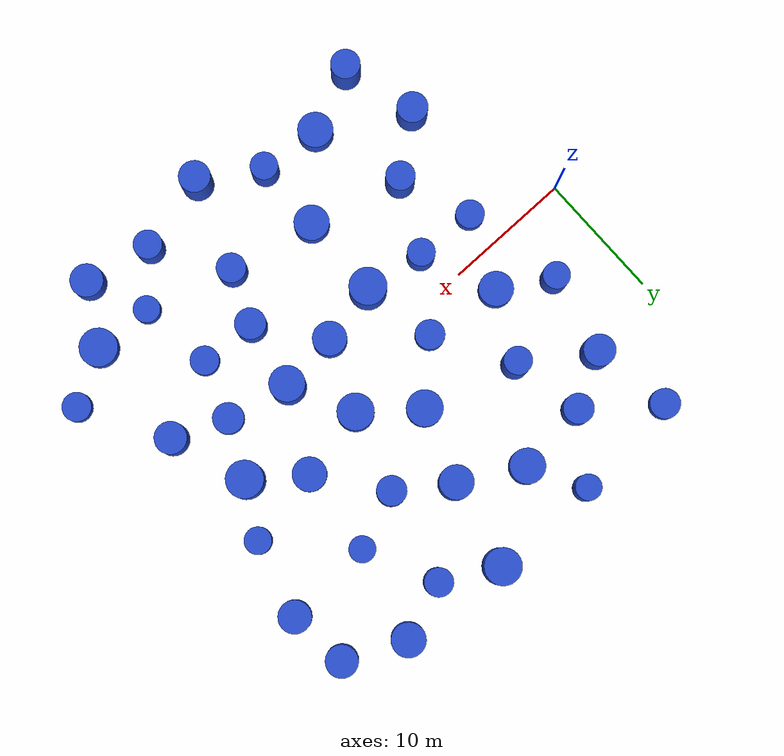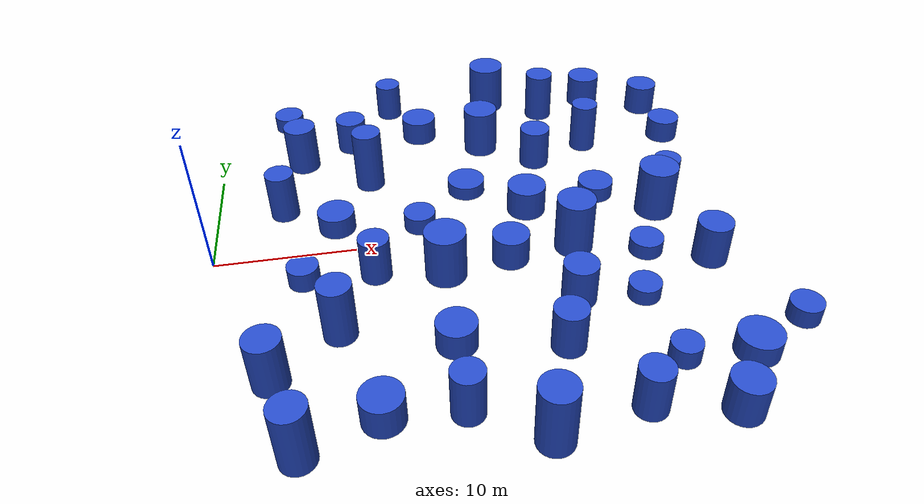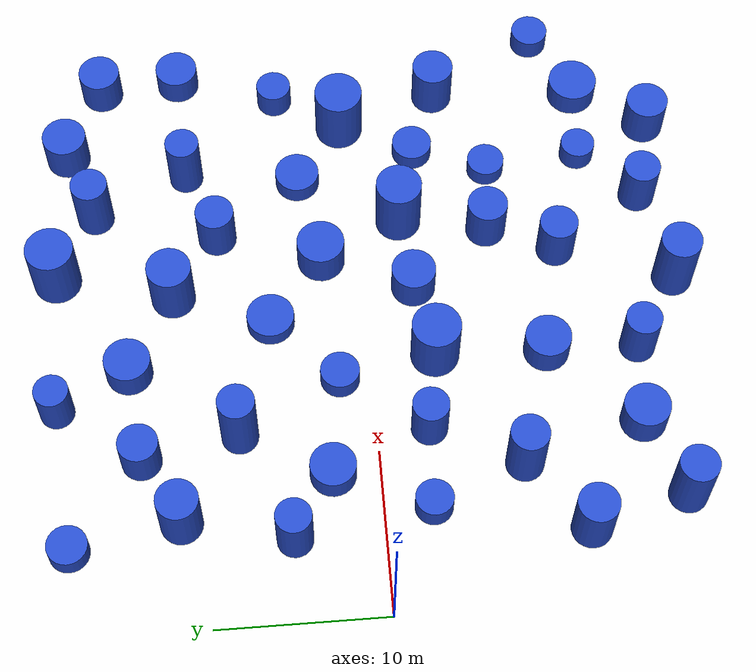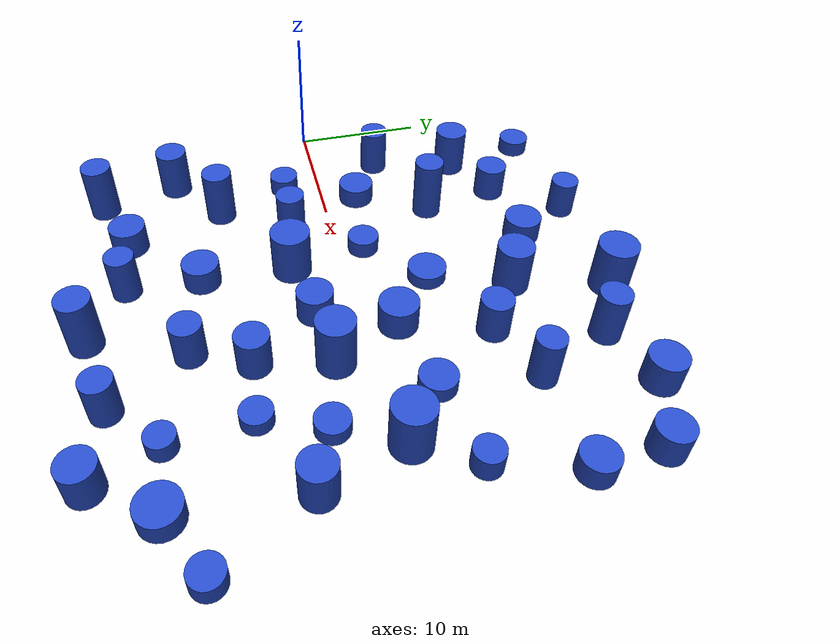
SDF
<sdf version="1.7">
 <world name="default">
  <model name="11">
   <static>1</static>
   <link name="link">
    <inertial>
     <mass>2</mass>
     <inertia><ixx>1.91224</ixx><ixy>0</ixy><ixz>0</ixz><iyy>1.91224</iyy><iyz>0</iyz><izz>2.0599</izz></inertia>
    </inertial>
    <collision name="collision">
     <geometry><cylinder><length>2.30082</length><radius>1.43524</radius></cylinder></geometry>
     <surface><contact><collide_without_contact>1</collide_without_contact></contact></surface>
    </collision>
    <visual name="visual">
     <geometry><cylinder><length>2.30082</length><radius>1.43524</radius></cylinder></geometry>
     <material>
      <script><uri>file://media/materials/scripts/gazebo.material</uri><name>Gazebo/Blue</name></script>
     </material>
    </visual>
    <gravity>0</gravity>
   </link>
   <pose>22.9935 2.50664 1.15041 0 -0 0</pose>
  </model>
  <model name="13">
   <static>1</static>
   <link name="link">
    <inertial>
     <mass>2</mass>
     <inertia>
      <ixx>0.964017</ixx>
      <ixy>0</ixy>
      <ixz>0</ixz>
      <iyy>0.964017</iyy>
      <iyz>0</iyz>
      <izz>1.34566</izz>
     </inertia>
    </inertial>
    <collision name="collision">
     <geometry><cylinder><length>1.32178</length><radius>1.16003</radius></cylinder></geometry>
     <surface><contact><collide_without_contact>1</collide_without_contact></contact></surface>
    </collision>
    <visual name="visual">
     <geometry><cylinder><length>1.32178</length><radius>1.16003</radius></cylinder></geometry>
     <material>
      <script><uri>file://media/materials/scripts/gazebo.material</uri><name>Gazebo/Blue</name></script>
     </material>
    </visual>
    <gravity>0</gravity>
   </link>
   <pose>14.8128 1.93175 0.660892 0 -0 0</pose>
  </model>
  <model name="16">
   <static>1</static>
   <link name="link">
    <inertial>
     <mass>2</mass>
     <inertia><ixx>2.47357</ixx><ixy>0</ixy><ixz>0</ixz><iyy>2.47357</iyy><iyz>0</iyz><izz>1.3114</izz></inertia>
    </inertial>
    <collision name="collision">
     <geometry><cylinder><length>3.3026</length><radius>1.14516</radius></cylinder></geometry>
     <surface><contact><collide_without_contact>1</collide_without_contact></contact></surface>
    </collision>
    <visual name="visual">
     <geometry><cylinder><length>3.3026</length><radius>1.14516</radius></cylinder></geometry>
     <material>
      <script><uri>file://media/materials/scripts/gazebo.material</uri><name>Gazebo/Blue</name></script>
     </material>
    </visual>
    <gravity>0</gravity>
   </link>
   <pose>22.6505 -11.8133 1.6513 0 -0 0</pose>
  </model>
  <model name="22">
   <static>1</static>
   <link name="link">
    <inertial>
     <mass>2</mass>
     <inertia><ixx>1.58085</ixx><ixy>0</ixy><ixz>0</ixz><iyy>1.58085</iyy><iyz>0</iyz><izz>1.86526</izz></inertia>
    </inertial>
    <collision name="collision">
     <geometry><cylinder><length>1.97214</length><radius>1.36574</radius></cylinder></geometry>
     <surface><contact><collide_without_contact>1</collide_without_contact></contact></surface>
    </collision>
    <visual name="visual">
     <geometry><cylinder><length>1.97214</length><radius>1.36574</radius></cylinder></geometry>
     <material>
      <script><uri>file://media/materials/scripts/gazebo.material</uri><name>Gazebo/Blue</name></script>
     </material>
    </visual>
    <gravity>0</gravity>
   </link>
   <pose>15.7592 -10.418 0.986071 0 -0 0</pose>
  </model>
  <model name="24">
   <static>1</static>
   <link name="link">
    <inertial>
     <mass>2</mass>
     <inertia><ixx>1.32861</ixx><ixy>0</ixy><ixz>0</ixz><iyy>1.32861</iyy><iyz>0</iyz><izz>1.81936</izz></inertia>
    </inertial>
    <collision name="collision">
     <geometry><cylinder><length>1.58543</length><radius>1.34884</radius></cylinder></geometry>
     <surface><contact><collide_without_contact>1</collide_without_contact></contact></surface>
    </collision>
    <visual name="visual">
     <geometry><cylinder><length>1.58543</length><radius>1.34884</radius></cylinder></geometry>
     <material>
      <script><uri>file://media/materials/scripts/gazebo.material</uri><name>Gazebo/Blue</name></script>
     </material>
    </visual>
    <gravity>0</gravity>
   </link>
   <pose>8.75022 2.75537 0.792717 0 -0 0</pose>
  </model>
  <model name="28">
   <static>1</static>
   <link name="link">
    <inertial>
     <mass>2</mass>
     <inertia>
      <ixx>0.983625</ixx>
      <ixy>0</ixy>
      <ixz>0</ixz>
      <iyy>0.983625</iyy>
      <iyz>0</iyz>
      <izz>1.22166</izz>
     </inertia>
    </inertial>
    <collision name="collision">
     <geometry><cylinder><length>1.49558</length><radius>1.10529</radius></cylinder></geometry>
     <surface><contact><collide_without_contact>1</collide_without_contact></contact></surface>
    </collision>
    <visual name="visual">
     <geometry><cylinder><length>1.49558</length><radius>1.10529</radius></cylinder></geometry>
     <material>
      <script><uri>file://media/materials/scripts/gazebo.material</uri><name>Gazebo/Blue</name></script>
     </material>
    </visual>
    <gravity>0</gravity>
   </link>
   <pose>6.33318 -2.81082 0.74779 0 -0 0</pose>
  </model>
  <model name="29">
   <static>1</static>
   <link name="link">
    <inertial>
     <mass>2</mass>
     <inertia>
      <ixx>0.967878</ixx>
      <ixy>0</ixy>
      <ixz>0</ixz>
      <iyy>0.967878</iyy>
      <iyz>0</iyz>
      <izz>1.27681</izz>
     </inertia>
    </inertial>
    <collision name="collision">
     <geometry><cylinder><length>1.406</length><radius>1.12996</radius></cylinder></geometry>
     <surface><contact><collide_without_contact>1</collide_without_contact></contact></surface>
    </collision>
    <visual name="visual">
     <geometry><cylinder><length>1.406</length><radius>1.12996</radius></cylinder></geometry>
     <material>
      <script><uri>file://media/materials/scripts/gazebo.material</uri><name>Gazebo/Blue</name></script>
     </material>
    </visual>
    <gravity>0</gravity>
   </link>
   <pose>38.3677 -12.0648 0.703 0 -0 0</pose>
  </model>
  <model name="30">
   <static>1</static>
   <link name="link">
    <inertial>
     <mass>2</mass>
     <inertia><ixx>2.03446</ixx><ixy>0</ixy><ixz>0</ixz><iyy>2.03446</iyy><iyz>0</iyz><izz>1.03977</izz></inertia>
    </inertial>
    <collision name="collision">
     <geometry><cylinder><length>3.01455</length><radius>1.01969</radius></cylinder></geometry>
     <surface><contact><collide_without_contact>1</collide_without_contact></contact></surface>
    </collision>
    <visual name="visual">
     <geometry><cylinder><length>3.01455</length><radius>1.01969</radius></cylinder></geometry>
     <material>
      <script><uri>file://media/materials/scripts/gazebo.material</uri><name>Gazebo/Blue</name></script>
     </material>
    </visual>
    <gravity>0</gravity>
   </link>
   <pose>13.906 18.5337 1.50727 0 -0 0</pose>
  </model>
  <model name="33">
   <static>1</static>
   <link name="link">
    <inertial>
     <mass>2</mass>
     <inertia><ixx>1.14831</ixx><ixy>0</ixy><ixz>0</ixz><iyy>1.14831</iyy><iyz>0</iyz><izz>1.79051</izz></inertia>
    </inertial>
    <collision name="collision">
     <geometry><cylinder><length>1.2322</length><radius>1.3381</radius></cylinder></geometry>
     <surface><contact><collide_without_contact>1</collide_without_contact></contact></surface>
    </collision>
    <visual name="visual">
     <geometry><cylinder><length>1.2322</length><radius>1.3381</radius></cylinder></geometry>
     <material>
      <script><uri>file://media/materials/scripts/gazebo.material</uri><name>Gazebo/Blue</name></script>
     </material>
    </visual>
    <gravity>0</gravity>
   </link>
   <pose>28.7359 3.61262 0.616102 0 -0 0</pose>
  </model>
  <model name="35">
   <static>1</static>
   <link name="link">
    <inertial>
     <mass>2</mass>
     <inertia><ixx>2.57582</ixx><ixy>0</ixy><ixz>0</ixz><iyy>2.57582</iyy><iyz>0</iyz><izz>1.57327</izz></inertia>
    </inertial>
    <collision name="collision">
     <geometry><cylinder><length>3.27645</length><radius>1.2543</radius></cylinder></geometry>
     <surface><contact><collide_without_contact>1</collide_without_contact></contact></surface>
    </collision>
    <visual name="visual">
     <geometry><cylinder><length>3.27645</length><radius>1.2543</radius></cylinder></geometry>
     <material>
      <script><uri>file://media/materials/scripts/gazebo.material</uri><name>Gazebo/Blue</name></script>
     </material>
    </visual>
    <gravity>0</gravity>
   </link>
   <pose>34.6176 -5.35558 1.63823 0 -0 0</pose>
  </model>
  <model name="36">
   <static>1</static>
   <link name="link">
    <inertial>
     <mass>2</mass>
     <inertia><ixx>3.78802</ixx><ixy>0</ixy><ixz>0</ixz><iyy>3.78802</iyy><iyz>0</iyz><izz>1.26667</izz></inertia>
    </inertial>
    <collision name="collision">
     <geometry><cylinder><length>4.35064</length><radius>1.12547</radius></cylinder></geometry>
     <surface><contact><collide_without_contact>1</collide_without_contact></contact></surface>
    </collision>
    <visual name="visual">
     <geometry><cylinder><length>4.35064</length><radius>1.12547</radius></cylinder></geometry>
     <material>
      <script><uri>file://media/materials/scripts/gazebo.material</uri><name>Gazebo/Blue</name></script>
     </material>
    </visual>
    <gravity>0</gravity>
   </link>
   <pose>8.59226 -8.27146 2.17532 0 -0 0</pose>
  </model>
  <model name="38">
   <static>1</static>
   <link name="link">
    <inertial>
     <mass>2</mass>
     <inertia><ixx>3.19928</ixx><ixy>0</ixy><ixz>0</ixz><iyy>3.19928</iyy><iyz>0</iyz><izz>1.42566</izz></inertia>
    </inertial>
    <collision name="collision">
     <geometry><cylinder><length>3.86248</length><radius>1.19401</radius></cylinder></geometry>
     <surface><contact><collide_without_contact>1</collide_without_contact></contact></surface>
    </collision>
    <visual name="visual">
     <geometry><cylinder><length>3.86248</length><radius>1.19401</radius></cylinder></geometry>
     <material>
      <script><uri>file://media/materials/scripts/gazebo.material</uri><name>Gazebo/Blue</name></script>
     </material>
    </visual>
    <gravity>0</gravity>
   </link>
   <pose>4.34279 -11.5728 1.93124 0 -0 0</pose>
  </model>
  <model name="41">
   <static>1</static>
   <link name="link">
    <inertial>
     <mass>2</mass>
     <inertia><ixx>3.73559</ixx><ixy>0</ixy><ixz>0</ixz><iyy>3.73559</iyy><iyz>0</iyz><izz>2.07918</izz></inertia>
    </inertial>
    <collision name="collision">
     <geometry><cylinder><length>4.02194</length><radius>1.44194</radius></cylinder></geometry>
     <surface><contact><collide_without_contact>1</collide_without_contact></contact></surface>
    </collision>
    <visual name="visual">
     <geometry><cylinder><length>4.02194</length><radius>1.44194</radius></cylinder></geometry>
     <material>
      <script><uri>file://media/materials/scripts/gazebo.material</uri><name>Gazebo/Blue</name></script>
     </material>
    </visual>
    <gravity>0</gravity>
   </link>
   <pose>22.6999 18.5365 2.01097 0 -0 0</pose>
  </model>
  <model name="43">
   <static>1</static>
   <link name="link">
    <inertial>
     <mass>2</mass>
     <inertia><ixx>2.02978</ixx><ixy>0</ixy><ixz>0</ixz><iyy>2.02978</iyy><iyz>0</iyz><izz>1.79361</izz></inertia>
    </inertial>
    <collision name="collision">
     <geometry><cylinder><length>2.60727</length><radius>1.33926</radius></cylinder></geometry>
     <surface><contact><collide_without_contact>1</collide_without_contact></contact></surface>
    </collision>
    <visual name="visual">
     <geometry><cylinder><length>2.60727</length><radius>1.33926</radius></cylinder></geometry>
     <material>
      <script><uri>file://media/materials/scripts/gazebo.material</uri><name>Gazebo/Blue</name></script>
     </material>
    </visual>
    <gravity>0</gravity>
   </link>
   <pose>31.5876 17.8589 1.30363 0 -0 0</pose>
  </model>
  <model name="46">
   <static>1</static>
   <link name="link">
    <inertial>
     <mass>2</mass>
     <inertia><ixx>4.0051</ixx><ixy>0</ixy><ixz>0</ixz><iyy>4.0051</iyy><iyz>0</iyz><izz>1.29779</izz></inertia>
    </inertial>
    <collision name="collision">
     <geometry><cylinder><length>4.48746</length><radius>1.1392</radius></cylinder></geometry>
     <surface><contact><collide_without_contact>1</collide_without_contact></contact></surface>
    </collision>
    <visual name="visual">
     <geometry><cylinder><length>4.48746</length><radius>1.1392</radius></cylinder></geometry>
     <material>
      <script><uri>file://media/materials/scripts/gazebo.material</uri><name>Gazebo/Blue</name></script>
     </material>
    </visual>
    <gravity>0</gravity>
   </link>
   <pose>5.95432 -17.3269 2.24373 0 -0 0</pose>
  </model>
  <model name="49">
   <static>1</static>
   <link name="link">
    <inertial>
     <mass>2</mass>
     <inertia><ixx>1.39564</ixx><ixy>0</ixy><ixz>0</ixz><iyy>1.39564</iyy><iyz>0</iyz><izz>1.6733</izz></inertia>
    </inertial>
    <collision name="collision">
     <geometry><cylinder><length>1.83138</length><radius>1.29356</radius></cylinder></geometry>
     <surface><contact><collide_without_contact>1</collide_without_contact></contact></surface>
    </collision>
    <visual name="visual">
     <geometry><cylinder><length>1.83138</length><radius>1.29356</radius></cylinder></geometry>
     <material>
      <script><uri>file://media/materials/scripts/gazebo.material</uri><name>Gazebo/Blue</name></script>
     </material>
    </visual>
    <gravity>0</gravity>
   </link>
   <pose>36.7718 10.8356 0.915688 0 -0 0</pose>
  </model>
  <model name="53">
   <static>1</static>
   <link name="link">
    <inertial>
     <mass>2</mass>
     <inertia><ixx>1.74712</ixx><ixy>0</ixy><ixz>0</ixz><iyy>1.74712</iyy><iyz>0</iyz><izz>1.86972</izz></inertia>
    </inertial>
    <collision name="collision">
     <geometry><cylinder><length>2.20761</length><radius>1.36738</radius></cylinder></geometry>
     <surface><contact><collide_without_contact>1</collide_without_contact></contact></surface>
    </collision>
    <visual name="visual">
     <geometry><cylinder><length>2.20761</length><radius>1.36738</radius></cylinder></geometry>
     <material>
      <script><uri>file://media/materials/scripts/gazebo.material</uri><name>Gazebo/Blue</name></script>
     </material>
    </visual>
    <gravity>0</gravity>
   </link>
   <pose>10.7708 -15.4774 1.10381 0 -0 0</pose>
  </model>
  <model name="54">
   <static>1</static>
   <link name="link">
    <inertial>
     <mass>2</mass>
     <inertia><ixx>3.19702</ixx><ixy>0</ixy><ixz>0</ixz><iyy>3.19702</iyy><iyz>0</iyz><izz>1.06209</izz></inertia>
    </inertial>
    <collision name="collision">
     <geometry><cylinder><length>3.99948</length><radius>1.03058</radius></cylinder></geometry>
     <surface><contact><collide_without_contact>1</collide_without_contact></contact></surface>
    </collision>
    <visual name="visual">
     <geometry><cylinder><length>3.99948</length><radius>1.03058</radius></cylinder></geometry>
     <material>
      <script><uri>file://media/materials/scripts/gazebo.material</uri><name>Gazebo/Blue</name></script>
     </material>
    </visual>
    <gravity>0</gravity>
   </link>
   <pose>29.5844 10.5129 1.99974 0 -0 0</pose>
  </model>
  <model name="55">
   <static>1</static>
   <link name="link">
    <inertial>
     <mass>2</mass>
     <inertia><ixx>1.93283</ixx><ixy>0</ixy><ixz>0</ixz><iyy>1.93283</iyy><iyz>0</iyz><izz>1.39065</izz></inertia>
    </inertial>
    <collision name="collision">
     <geometry><cylinder><length>2.72488</length><radius>1.17926</radius></cylinder></geometry>
     <surface><contact><collide_without_contact>1</collide_without_contact></contact></surface>
    </collision>
    <visual name="visual">
     <geometry><cylinder><length>2.72488</length><radius>1.17926</radius></cylinder></geometry>
     <material>
      <script><uri>file://media/materials/scripts/gazebo.material</uri><name>Gazebo/Blue</name></script>
     </material>
    </visual>
    <gravity>0</gravity>
   </link>
   <pose>10.4144 13.6856 1.36244 0 -0 0</pose>
  </model>
  <model name="56">
   <static>1</static>
   <link name="link">
    <inertial>
     <mass>2</mass>
     <inertia><ixx>3.47027</ixx><ixy>0</ixy><ixz>0</ixz><iyy>3.47027</iyy><iyz>0</iyz><izz>2.10687</izz></inertia>
    </inertial>
    <collision name="collision">
     <geometry><cylinder><length>3.80802</length><radius>1.45151</radius></cylinder></geometry>
     <surface><contact><collide_without_contact>1</collide_without_contact></contact></surface>
    </collision>
    <visual name="visual">
     <geometry><cylinder><length>3.80802</length><radius>1.45151</radius></cylinder></geometry>
     <material>
      <script><uri>file://media/materials/scripts/gazebo.material</uri><name>Gazebo/Blue</name></script>
     </material>
    </visual>
    <gravity>0</gravity>
   </link>
   <pose>15.9973 -3.78561 1.90401 0 -0 0</pose>
  </model>
  <model name="59">
   <static>1</static>
   <link name="link">
    <inertial>
     <mass>2</mass>
     <inertia><ixx>2.58658</ixx><ixy>0</ixy><ixz>0</ixz><iyy>2.58658</iyy><iyz>0</iyz><izz>1.23074</izz></inertia>
    </inertial>
    <collision name="collision">
     <geometry><cylinder><length>3.43908</length><radius>1.10939</radius></cylinder></geometry>
     <surface><contact><collide_without_contact>1</collide_without_contact></contact></surface>
    </collision>
    <visual name="visual">
     <geometry><cylinder><length>3.43908</length><radius>1.10939</radius></cylinder></geometry>
     <material>
      <script><uri>file://media/materials/scripts/gazebo.material</uri><name>Gazebo/Blue</name></script>
     </material>
    </visual>
    <gravity>0</gravity>
   </link>
   <pose>26.119 -17.3555 1.71954 0 -0 0</pose>
  </model>
  <model name="60">
   <static>1</static>
   <link name="link">
    <inertial>
     <mass>2</mass>
     <inertia><ixx>1.19868</ixx><ixy>0</ixy><ixz>0</ixz><iyy>1.19868</iyy><iyz>0</iyz><izz>2.02202</izz></inertia>
    </inertial>
    <collision name="collision">
     <geometry><cylinder><length>1.06114</length><radius>1.42198</radius></cylinder></geometry>
     <surface><contact><collide_without_contact>1</collide_without_contact></contact></surface>
    </collision>
    <visual name="visual">
     <geometry><cylinder><length>1.06114</length><radius>1.42198</radius></cylinder></geometry>
     <material>
      <script><uri>file://media/materials/scripts/gazebo.material</uri><name>Gazebo/Blue</name></script>
     </material>
    </visual>
    <gravity>0</gravity>
   </link>
   <pose>18.8807 5.79945 0.53057 0 -0 0</pose>
  </model>
  <model name="67">
   <static>1</static>
   <link name="link">
    <inertial>
     <mass>2</mass>
     <inertia><ixx>1.54465</ixx><ixy>0</ixy><ixz>0</ixz><iyy>1.54465</iyy><iyz>0</iyz><izz>2.2301</izz></inertia>
    </inertial>
    <collision name="collision">
     <geometry><cylinder><length>1.6055</length><radius>1.49335</radius></cylinder></geometry>
     <surface><contact><collide_without_contact>1</collide_without_contact></contact></surface>
    </collision>
    <visual name="visual">
     <geometry><cylinder><length>1.6055</length><radius>1.49335</radius></cylinder></geometry>
     <material>
      <script><uri>file://media/materials/scripts/gazebo.material</uri><name>Gazebo/Blue</name></script>
     </material>
    </visual>
    <gravity>0</gravity>
   </link>
   <pose>34.1126 -14.3077 0.802748 0 -0 0</pose>
  </model>
  <model name="70">
   <static>1</static>
   <link name="link">
    <inertial>
     <mass>2</mass>
     <inertia>
      <ixx>0.969389</ixx>
      <ixy>0</ixy>
      <ixz>0</ixz>
      <iyy>0.969389</iyy>
      <iyz>0</iyz>
      <izz>1.39152</izz>
     </inertia>
    </inertial>
    <collision name="collision">
     <geometry><cylinder><length>1.28132</length><radius>1.17963</radius></cylinder></geometry>
     <surface><contact><collide_without_contact>1</collide_without_contact></contact></surface>
    </collision>
    <visual name="visual">
     <geometry><cylinder><length>1.28132</length><radius>1.17963</radius></cylinder></geometry>
     <material>
      <script><uri>file://media/materials/scripts/gazebo.material</uri><name>Gazebo/Blue</name></script>
     </material>
    </visual>
    <gravity>0</gravity>
   </link>
   <pose>5.15254 17.8539 0.640659 0 -0 0</pose>
  </model>
  <model name="74">
   <static>1</static>
   <link name="link">
    <inertial>
     <mass>2</mass>
     <inertia><ixx>2.42209</ixx><ixy>0</ixy><ixz>0</ixz><iyy>2.42209</iyy><iyz>0</iyz><izz>1.16252</izz></inertia>
    </inertial>
    <collision name="collision">
     <geometry><cylinder><length>3.3234</length><radius>1.0782</radius></cylinder></geometry>
     <surface><contact><collide_without_contact>1</collide_without_contact></contact></surface>
    </collision>
    <visual name="visual">
     <geometry><cylinder><length>3.3234</length><radius>1.0782</radius></cylinder></geometry>
     <material>
      <script><uri>file://media/materials/scripts/gazebo.material</uri><name>Gazebo/Blue</name></script>
     </material>
    </visual>
    <gravity>0</gravity>
   </link>
   <pose>11.2414 -3.01872 1.6617 0 -0 0</pose>
  </model>
  <model name="79">
   <static>1</static>
   <link name="link">
    <inertial>
     <mass>2</mass>
     <inertia><ixx>1.57404</ixx><ixy>0</ixy><ixz>0</ixz><iyy>1.57404</iyy><iyz>0</iyz><izz>1.90715</izz></inertia>
    </inertial>
    <collision name="collision">
     <geometry><cylinder><length>1.92945</length><radius>1.381</radius></cylinder></geometry>
     <surface><contact><collide_without_contact>1</collide_without_contact></contact></surface>
    </collision>
    <visual name="visual">
     <geometry><cylinder><length>1.92945</length><radius>1.381</radius></cylinder></geometry>
     <material>
      <script><uri>file://media/materials/scripts/gazebo.material</uri><name>Gazebo/Blue</name></script>
     </material>
    </visual>
    <gravity>0</gravity>
   </link>
   <pose>16.1304 14.2889 0.964725 0 -0 0</pose>
  </model>
  <model name="80">
   <static>1</static>
   <link name="link">
    <inertial>
     <mass>2</mass>
     <inertia><ixx>0.86163</ixx><ixy>0</ixy><ixz>0</ixz><iyy>0.86163</iyy><iyz>0</iyz><izz>1.27303</izz></inertia>
    </inertial>
    <collision name="collision">
     <geometry><cylinder><length>1.16219</length><radius>1.12829</radius></cylinder></geometry>
     <surface><contact><collide_without_contact>1</collide_without_contact></contact></surface>
    </collision>
    <visual name="visual">
     <geometry><cylinder><length>1.16219</length><radius>1.12829</radius></cylinder></geometry>
     <material>
      <script><uri>file://media/materials/scripts/gazebo.material</uri><name>Gazebo/Blue</name></script>
     </material>
    </visual>
    <gravity>0</gravity>
   </link>
   <pose>28.8191 -8.17536 0.581094 0 -0 0</pose>
  </model>
  <model name="81">
   <static>1</static>
   <link name="link">
    <inertial>
     <mass>2</mass>
     <inertia><ixx>3.75222</ixx><ixy>0</ixy><ixz>0</ixz><iyy>3.75222</iyy><iyz>0</iyz><izz>2.11524</izz></inertia>
    </inertial>
    <collision name="collision">
     <geometry><cylinder><length>4.02089</length><radius>1.45439</radius></cylinder></geometry>
     <surface><contact><collide_without_contact>1</collide_without_contact></contact></surface>
    </collision>
    <visual name="visual">
     <geometry><cylinder><length>4.02089</length><radius>1.45439</radius></cylinder></geometry>
     <material>
      <script><uri>file://media/materials/scripts/gazebo.material</uri><name>Gazebo/Blue</name></script>
     </material>
    </visual>
    <gravity>0</gravity>
   </link>
   <pose>32.5809 0.735671 2.01045 0 -0 0</pose>
  </model>
  <model name="84">
   <static>1</static>
   <link name="link">
    <inertial>
     <mass>2</mass>
     <inertia><ixx>1.74023</ixx><ixy>0</ixy><ixz>0</ixz><iyy>1.74023</iyy><iyz>0</iyz><izz>1.75835</izz></inertia>
    </inertial>
    <collision name="collision">
     <geometry><cylinder><length>2.27296</length><radius>1.32603</radius></cylinder></geometry>
     <surface><contact><collide_without_contact>1</collide_without_contact></contact></surface>
    </collision>
    <visual name="visual">
     <geometry><cylinder><length>2.27296</length><radius>1.32603</radius></cylinder></geometry>
     <material>
      <script><uri>file://media/materials/scripts/gazebo.material</uri><name>Gazebo/Blue</name></script>
     </material>
    </visual>
    <gravity>0</gravity>
   </link>
   <pose>20.7053 -2.92397 1.13648 0 -0 0</pose>
  </model>
  <model name="85">
   <static>1</static>
   <link name="link">
    <inertial>
     <mass>2</mass>
     <inertia><ixx>4.25084</ixx><ixy>0</ixy><ixz>0</ixz><iyy>4.25084</iyy><iyz>0</iyz><izz>1.48264</izz></inertia>
    </inertial>
    <collision name="collision">
     <geometry><cylinder><length>4.5888</length><radius>1.21764</radius></cylinder></geometry>
     <surface><contact><collide_without_contact>1</collide_without_contact></contact></surface>
    </collision>
    <visual name="visual">
     <geometry><cylinder><length>4.5888</length><radius>1.21764</radius></cylinder></geometry>
     <material>
      <script><uri>file://media/materials/scripts/gazebo.material</uri><name>Gazebo/Blue</name></script>
     </material>
    </visual>
    <gravity>0</gravity>
   </link>
   <pose>20.1068 -18.6368 2.2944 0 -0 0</pose>
  </model>
  <model name="86">
   <static>1</static>
   <link name="link">
    <inertial>
     <mass>2</mass>
     <inertia><ixx>2.75494</ixx><ixy>0</ixy><ixz>0</ixz><iyy>2.75494</iyy><iyz>0</iyz><izz>1.14534</izz></inertia>
    </inertial>
    <collision name="collision">
     <geometry><cylinder><length>3.61851</length><radius>1.0702</radius></cylinder></geometry>
     <surface><contact><collide_without_contact>1</collide_without_contact></contact></surface>
    </collision>
    <visual name="visual">
     <geometry><cylinder><length>3.61851</length><radius>1.0702</radius></cylinder></geometry>
     <material>
      <script><uri>file://media/materials/scripts/gazebo.material</uri><name>Gazebo/Blue</name></script>
     </material>
    </visual>
    <gravity>0</gravity>
   </link>
   <pose>15.6297 -15.8451 1.80926 0 -0 0</pose>
  </model>
  <model name="88">
   <static>1</static>
   <link name="link">
    <inertial>
     <mass>2</mass>
     <inertia><ixx>3.30921</ixx><ixy>0</ixy><ixz>0</ixz><iyy>3.30921</iyy><iyz>0</iyz><izz>1.76971</izz></inertia>
    </inertial>
    <collision name="collision">
     <geometry><cylinder><length>3.81394</length><radius>1.3303</radius></cylinder></geometry>
     <surface><contact><collide_without_contact>1</collide_without_contact></contact></surface>
    </collision>
    <visual name="visual">
     <geometry><cylinder><length>3.81394</length><radius>1.3303</radius></cylinder></geometry>
     <material>
      <script><uri>file://media/materials/scripts/gazebo.material</uri><name>Gazebo/Blue</name></script>
     </material>
    </visual>
    <gravity>0</gravity>
   </link>
   <pose>21.0126 11.5658 1.90697 0 -0 0</pose>
  </model>
  <model name="89">
   <static>1</static>
   <link name="link">
    <inertial>
     <mass>2</mass>
     <inertia><ixx>2.3974</ixx><ixy>0</ixy><ixz>0</ixz><iyy>2.3974</iyy><iyz>0</iyz><izz>1.35476</izz></inertia>
    </inertial>
    <collision name="collision">
     <geometry><cylinder><length>3.21249</length><radius>1.16394</radius></cylinder></geometry>
     <surface><contact><collide_without_contact>1</collide_without_contact></contact></surface>
    </collision>
    <visual name="visual">
     <geometry><cylinder><length>3.21249</length><radius>1.16394</radius></cylinder></geometry>
     <material>
      <script><uri>file://media/materials/scripts/gazebo.material</uri><name>Gazebo/Blue</name></script>
     </material>
    </visual>
    <gravity>0</gravity>
   </link>
   <pose>25.0128 8.76105 1.60625 0 -0 0</pose>
  </model>
  <model name="90">
   <static>1</static>
   <link name="link">
    <inertial>
     <mass>2</mass>
     <inertia><ixx>3.98345</ixx><ixy>0</ixy><ixz>0</ixz><iyy>3.98345</iyy><iyz>0</iyz><izz>1.90435</izz></inertia>
    </inertial>
    <collision name="collision">
     <geometry><cylinder><length>4.2647</length><radius>1.37998</radius></cylinder></geometry>
     <surface><contact><collide_without_contact>1</collide_without_contact></contact></surface>
    </collision>
    <visual name="visual">
     <geometry><cylinder><length>4.2647</length><radius>1.37998</radius></cylinder></geometry>
     <material>
      <script><uri>file://media/materials/scripts/gazebo.material</uri><name>Gazebo/Blue</name></script>
     </material>
    </visual>
    <gravity>0</gravity>
   </link>
   <pose>25.4348 -2.41266 2.13235 0 -0 0</pose>
  </model>
  <model name="92">
   <static>1</static>
   <link name="link">
    <inertial>
     <mass>2</mass>
     <inertia><ixx>3.09757</ixx><ixy>0</ixy><ixz>0</ixz><iyy>3.09757</iyy><iyz>0</iyz><izz>1.51616</izz></inertia>
    </inertial>
    <collision name="collision">
     <geometry><cylinder><length>3.74659</length><radius>1.23132</radius></cylinder></geometry>
     <surface><contact><collide_without_contact>1</collide_without_contact></contact></surface>
    </collision>
    <visual name="visual">
     <geometry><cylinder><length>3.74659</length><radius>1.23132</radius></cylinder></geometry>
     <material>
      <script><uri>file://media/materials/scripts/gazebo.material</uri><name>Gazebo/Blue</name></script>
     </material>
    </visual>
    <gravity>0</gravity>
   </link>
   <pose>6.37474 11.504 1.87329 0 -0 0</pose>
  </model>
  <model name="98">
   <static>1</static>
   <link name="link">
    <inertial>
     <mass>2</mass>
     <inertia><ixx>4.47947</ixx><ixy>0</ixy><ixz>0</ixz><iyy>4.47947</iyy><iyz>0</iyz><izz>1.18472</izz></inertia>
    </inertial>
    <collision name="collision">
     <geometry><cylinder><length>4.82935</length><radius>1.08845</radius></cylinder></geometry>
     <surface><contact><collide_without_contact>1</collide_without_contact></contact></surface>
    </collision>
    <visual name="visual">
     <geometry><cylinder><length>4.82935</length><radius>1.08845</radius></cylinder></geometry>
     <material>
      <script><uri>file://media/materials/scripts/gazebo.material</uri><name>Gazebo/Blue</name></script>
     </material>
    </visual>
    <gravity>0</gravity>
   </link>
   <pose>11.5395 7.97197 2.41467 0 -0 0</pose>
  </model>
  <model name="103">
   <static>1</static>
   <link name="link">
    <inertial>
     <mass>2</mass>
     <inertia><ixx>3.33302</ixx><ixy>0</ixy><ixz>0</ixz><iyy>3.33302</iyy><iyz>0</iyz><izz>1.24504</izz></inertia>
    </inertial>
    <collision name="collision">
     <geometry><cylinder><length>4.03274</length><radius>1.11581</radius></cylinder></geometry>
     <surface><contact><collide_without_contact>1</collide_without_contact></contact></surface>
    </collision>
    <visual name="visual">
     <geometry><cylinder><length>4.03274</length><radius>1.11581</radius></cylinder></geometry>
     <material>
      <script><uri>file://media/materials/scripts/gazebo.material</uri><name>Gazebo/Blue</name></script>
     </material>
    </visual>
    <gravity>0</gravity>
   </link>
   <pose>27.023 16.177 2.01637 0 -0 0</pose>
  </model>
  <model name="108">
   <static>1</static>
   <link name="link">
    <inertial>
     <mass>2</mass>
     <inertia><ixx>2.88974</ixx><ixy>0</ixy><ixz>0</ixz><iyy>2.88974</iyy><iyz>0</iyz><izz>1.10251</izz></inertia>
    </inertial>
    <collision name="collision">
     <geometry><cylinder><length>3.74578</length><radius>1.05</radius></cylinder></geometry>
     <surface><contact><collide_without_contact>1</collide_without_contact></contact></surface>
    </collision>
    <visual name="visual">
     <geometry><cylinder><length>3.74578</length><radius>1.05</radius></cylinder></geometry>
     <material>
      <script><uri>file://media/materials/scripts/gazebo.material</uri><name>Gazebo/Blue</name></script>
     </material>
    </visual>
    <gravity>0</gravity>
   </link>
   <pose>4.93047 5.16801 1.87289 0 -0 0</pose>
  </model>
  <model name="115">
   <static>1</static>
   <link name="link">
    <inertial>
     <mass>2</mass>
     <inertia><ixx>2.32175</ixx><ixy>0</ixy><ixz>0</ixz><iyy>2.32175</iyy><iyz>0</iyz><izz>1.46248</izz></inertia>
    </inertial>
    <collision name="collision">
     <geometry><cylinder><length>3.08919</length><radius>1.20933</radius></cylinder></geometry>
     <surface><contact><collide_without_contact>1</collide_without_contact></contact></surface>
    </collision>
    <visual name="visual">
     <geometry><cylinder><length>3.08919</length><radius>1.20933</radius></cylinder></geometry>
     <material>
      <script><uri>file://media/materials/scripts/gazebo.material</uri><name>Gazebo/Blue</name></script>
     </material>
    </visual>
    <gravity>0</gravity>
   </link>
   <pose>24.4107 -7.72764 1.54459 0 -0 0</pose>
  </model>
  <model name="116">
   <static>1</static>
   <link name="link">
    <inertial>
     <mass>2</mass>
     <inertia>
      <ixx>0.969596</ixx>
      <ixy>0</ixy>
      <ixz>0</ixz>
      <iyy>0.969596</iyy>
      <iyz>0</iyz>
      <izz>1.48394</izz>
     </inertia>
    </inertial>
    <collision name="collision">
     <geometry><cylinder><length>1.16866</length><radius>1.21817</radius></cylinder></geometry>
     <surface><contact><collide_without_contact>1</collide_without_contact></contact></surface>
    </collision>
    <visual name="visual">
     <geometry><cylinder><length>1.16866</length><radius>1.21817</radius></cylinder></geometry>
     <material>
      <script><uri>file://media/materials/scripts/gazebo.material</uri><name>Gazebo/Blue</name></script>
     </material>
    </visual>
    <gravity>0</gravity>
   </link>
   <pose>30.4428 -3.69708 0.58433 0 -0 0</pose>
  </model>
  <model name="118">
   <static>1</static>
   <link name="link">
    <inertial>
     <mass>2</mass>
     <inertia><ixx>2.14474</ixx><ixy>0</ixy><ixz>0</ixz><iyy>2.14474</iyy><iyz>0</iyz><izz>1.63241</izz></inertia>
    </inertial>
    <collision name="collision">
     <geometry><cylinder><length>2.82333</length><radius>1.27766</radius></cylinder></geometry>
     <surface><contact><collide_without_contact>1</collide_without_contact></contact></surface>
    </collision>
    <visual name="visual">
     <geometry><cylinder><length>2.82333</length><radius>1.27766</radius></cylinder></geometry>
     <material>
      <script><uri>file://media/materials/scripts/gazebo.material</uri><name>Gazebo/Blue</name></script>
     </material>
    </visual>
    <gravity>0</gravity>
   </link>
   <pose>31.3509 -18.5281 1.41167 0 -0 0</pose>
  </model>
  <model name="120">
   <static>1</static>
   <link name="link">
    <inertial>
     <mass>2</mass>
     <inertia><ixx>1.82564</ixx><ixy>0</ixy><ixz>0</ixz><iyy>1.82564</iyy><iyz>0</iyz><izz>1.60667</izz></inertia>
    </inertial>
    <collision name="collision">
     <geometry><cylinder><length>2.47665</length><radius>1.26754</radius></cylinder></geometry>
     <surface><contact><collide_without_contact>1</collide_without_contact></contact></surface>
    </collision>
    <visual name="visual">
     <geometry><cylinder><length>2.47665</length><radius>1.26754</radius></cylinder></geometry>
     <material>
      <script><uri>file://media/materials/scripts/gazebo.material</uri><name>Gazebo/Blue</name></script>
     </material>
    </visual>
    <gravity>0</gravity>
   </link>
   <pose>36.3661 15.6694 1.23833 0 -0 0</pose>
  </model>
  <model name="121">
   <static>1</static>
   <link name="link">
    <inertial>
     <mass>2</mass>
     <inertia><ixx>1.10475</ixx><ixy>0</ixy><ixz>0</ixz><iyy>1.10475</iyy><iyz>0</iyz><izz>1.13081</izz></inertia>
    </inertial>
    <collision name="collision">
     <geometry><cylinder><length>1.79892</length><radius>1.06339</radius></cylinder></geometry>
     <surface><contact><collide_without_contact>1</collide_without_contact></contact></surface>
    </collision>
    <visual name="visual">
     <geometry><cylinder><length>1.79892</length><radius>1.06339</radius></cylinder></geometry>
     <material>
      <script><uri>file://media/materials/scripts/gazebo.material</uri><name>Gazebo/Blue</name></script>
     </material>
    </visual>
    <gravity>0</gravity>
   </link>
   <pose>34.9793 4.7217 0.899459 0 -0 0</pose>
  </model>
  <model name="122">
   <static>1</static>
   <link name="link">
    <inertial>
     <mass>2</mass>
     <inertia>
      <ixx>0.881841</ixx>
      <ixy>0</ixy>
      <ixz>0</ixz>
      <iyy>0.881841</iyy>
      <iyz>0</iyz>
      <izz>1.09045</izz>
     </inertia>
    </inertial>
    <collision name="collision">
     <geometry><cylinder><length>1.42116</length><radius>1.04424</radius></cylinder></geometry>
     <surface><contact><collide_without_contact>1</collide_without_contact></contact></surface>
    </collision>
    <visual name="visual">
     <geometry><cylinder><length>1.42116</length><radius>1.04424</radius></cylinder></geometry>
     <material>
      <script><uri>file://media/materials/scripts/gazebo.material</uri><name>Gazebo/Blue</name></script>
     </material>
    </visual>
    <gravity>0</gravity>
   </link>
   <pose>29.4545 -14.031 0.710582 0 -0 0</pose>
  </model>
 </world>
</sdf>
